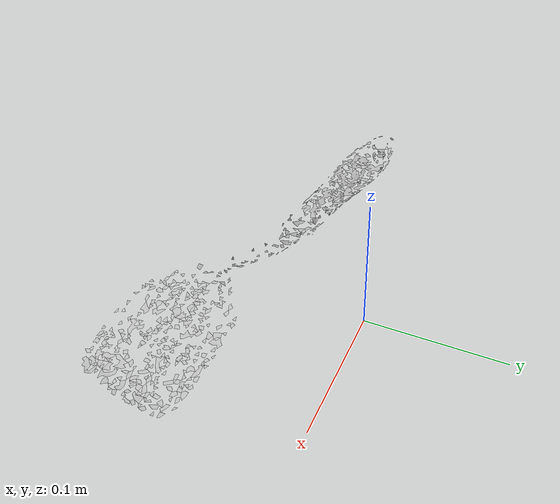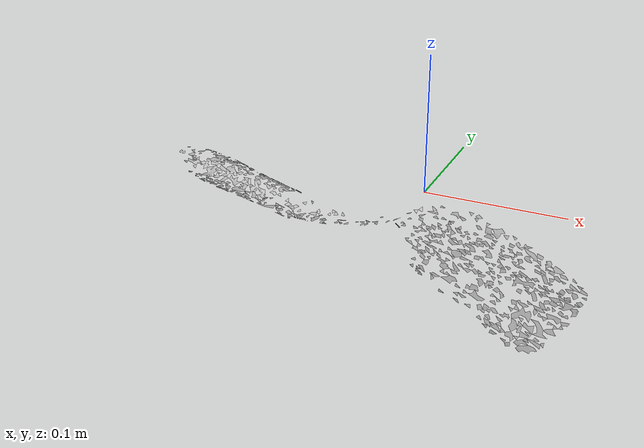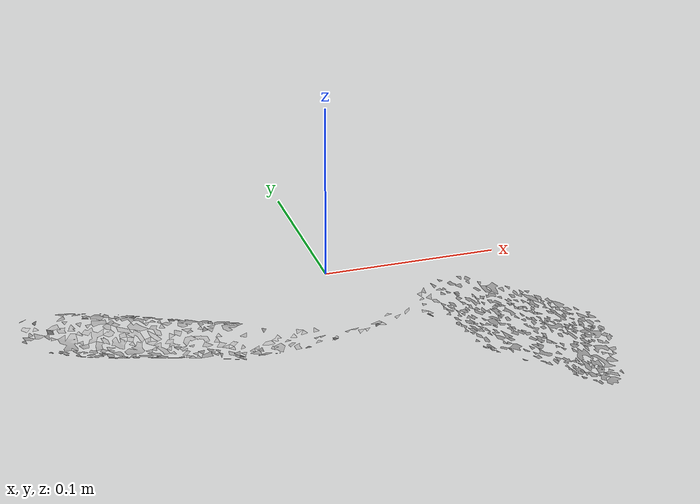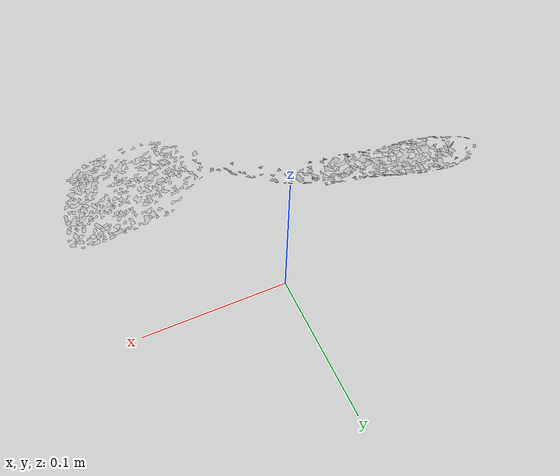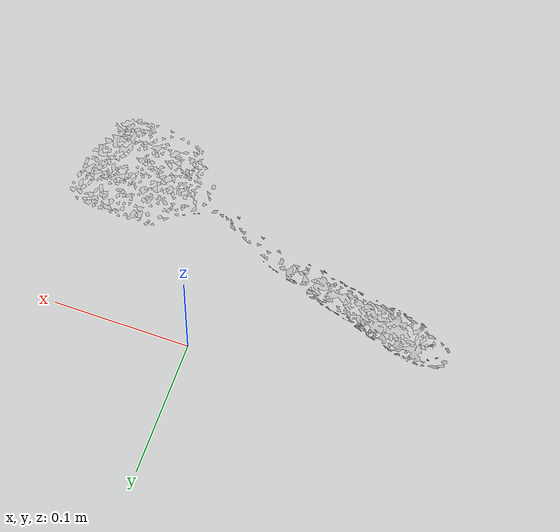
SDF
<?xml version="1.0" ?>
<sdf version="1.4">
  <model name='ycb_033_spatula'>
    <link name='body'>
      <inertial>
        <mass>0.0515</mass>
        <pose>-0.0465810443687 -0.0786057483552 0.0131891878737 0 0 0</pose>
        <inertia>
          <ixx>4.44129346453e-05</ixx>
          <ixy>0.000121047271618</ixy>
          <ixz>-1.24693874857e-06</ixz>
          <iyy>0.000457266391943</iyy>
          <iyz>3.58764856595e-07</iyz>
          <izz>0.000497056490671</izz>
        </inertia>
      </inertial>
      <visual name='ycb_033_spatula_visual'>
        <pose>0 0 0 0 0 0</pose>
        <geometry>
          <mesh>
            <uri>model://ycb_033_spatula/meshes/textured.dae</uri>
          </mesh>
        </geometry>
      </visual>
      <collision name='ycb_033_spatula_collision'>
        <pose>0 0 0 0 0 0</pose>
        <geometry>
          <mesh>
            <uri>model://ycb_033_spatula/meshes/nontextured.stl</uri>
          </mesh>
        </geometry>
        <max_contacts>10</max_contacts>
      </collision>
    </link>
  </model>
</sdf>
